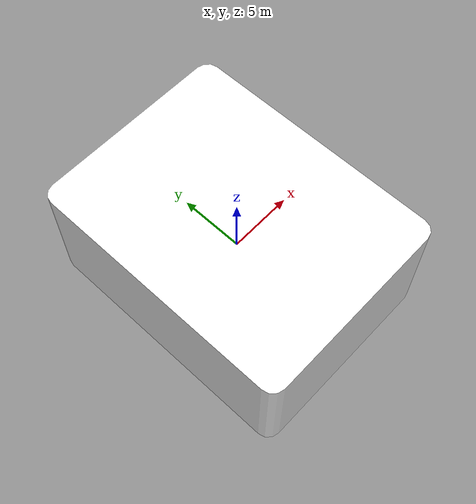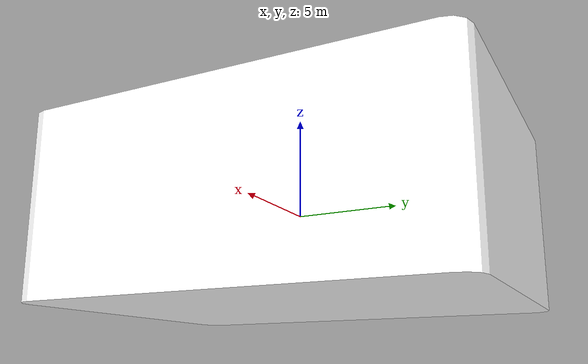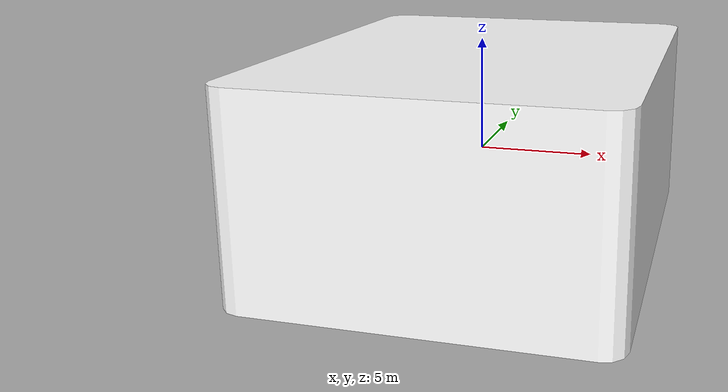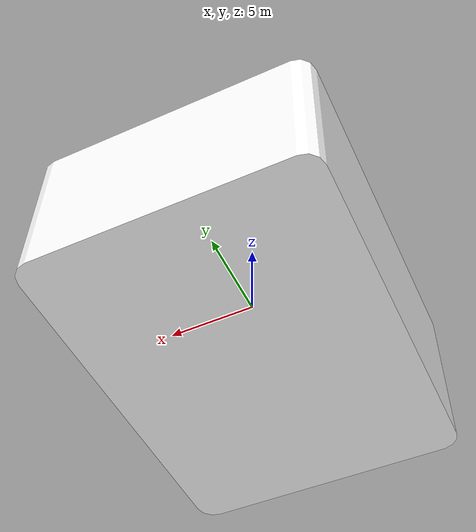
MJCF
<mujoco model="ctb_body">
  <default>
    <default class="visual">
      <geom group="2" type="mesh" contype="0" conaffinity="0"/>
    </default>
    <default class="collision">
      <geom group="3" type="mesh"/>
    </default>
  </default>
  <asset>
    <material name="mtl_ctb_body" specular="0.20000000000000004" shininess="1.0" rgba="1.00000000 1.00000000 1.00000000 1.0"/>
    <mesh file="ctb_body.obj"/>
  </asset>
  <worldbody>
    <body name="ctb_body">
      <geom material="mtl_ctb_body" mesh="ctb_body" class="visual"/>
      <geom mesh="ctb_body" class="collision"/>
    </body>
  </worldbody>
</mujoco>
